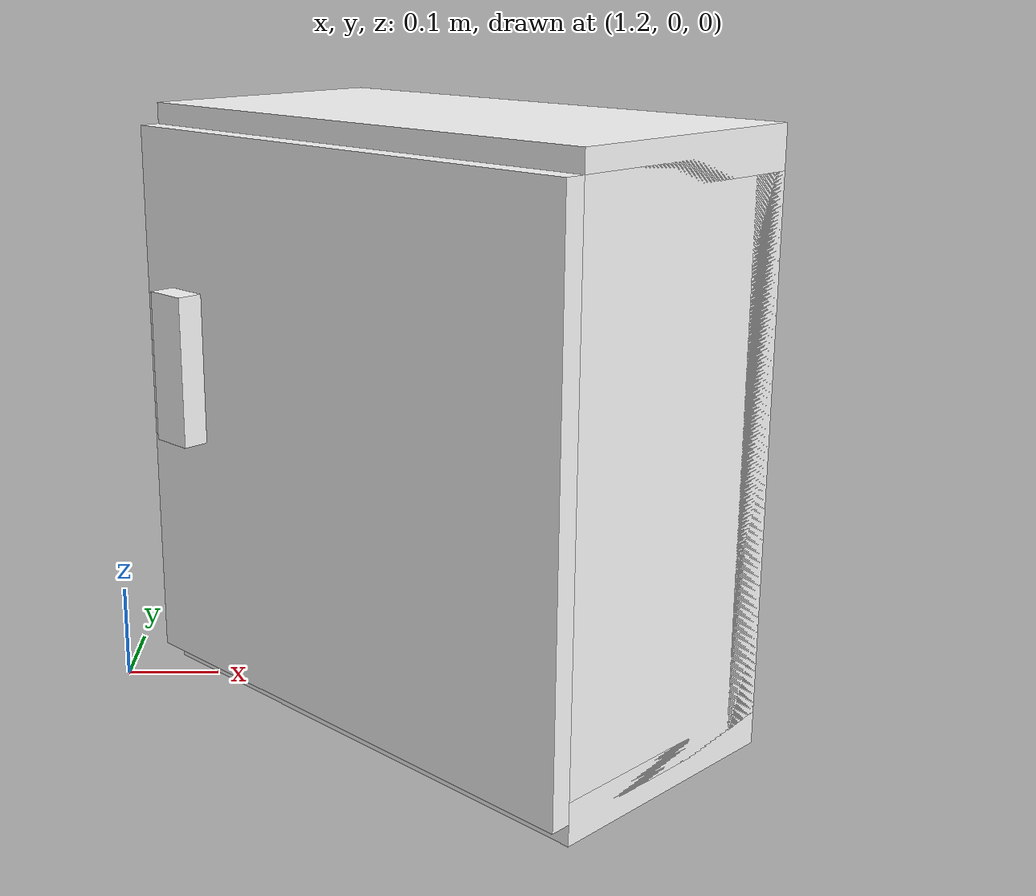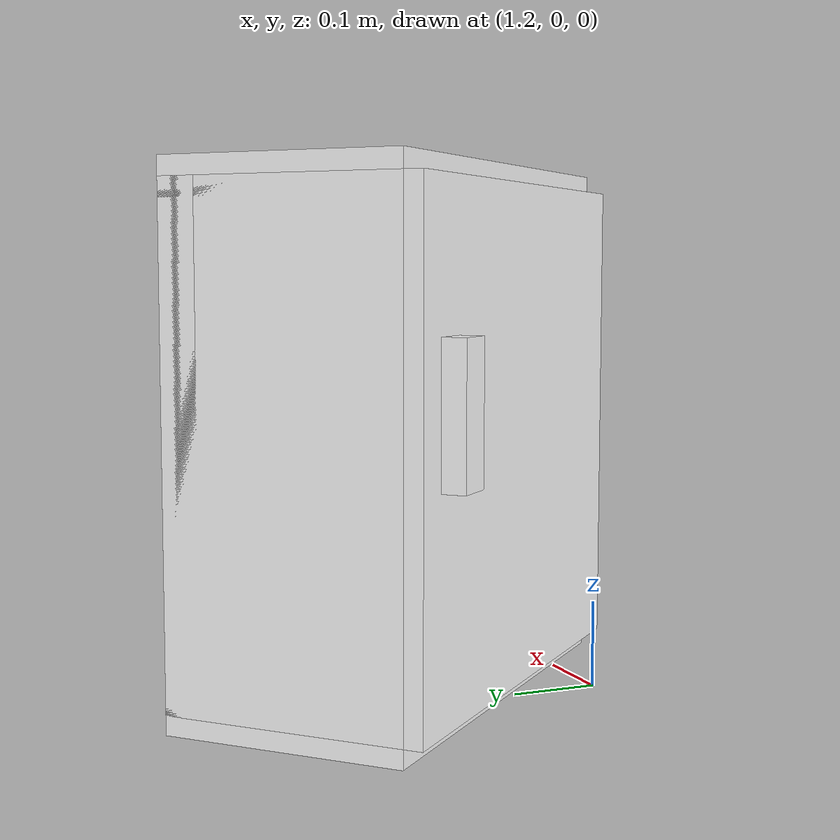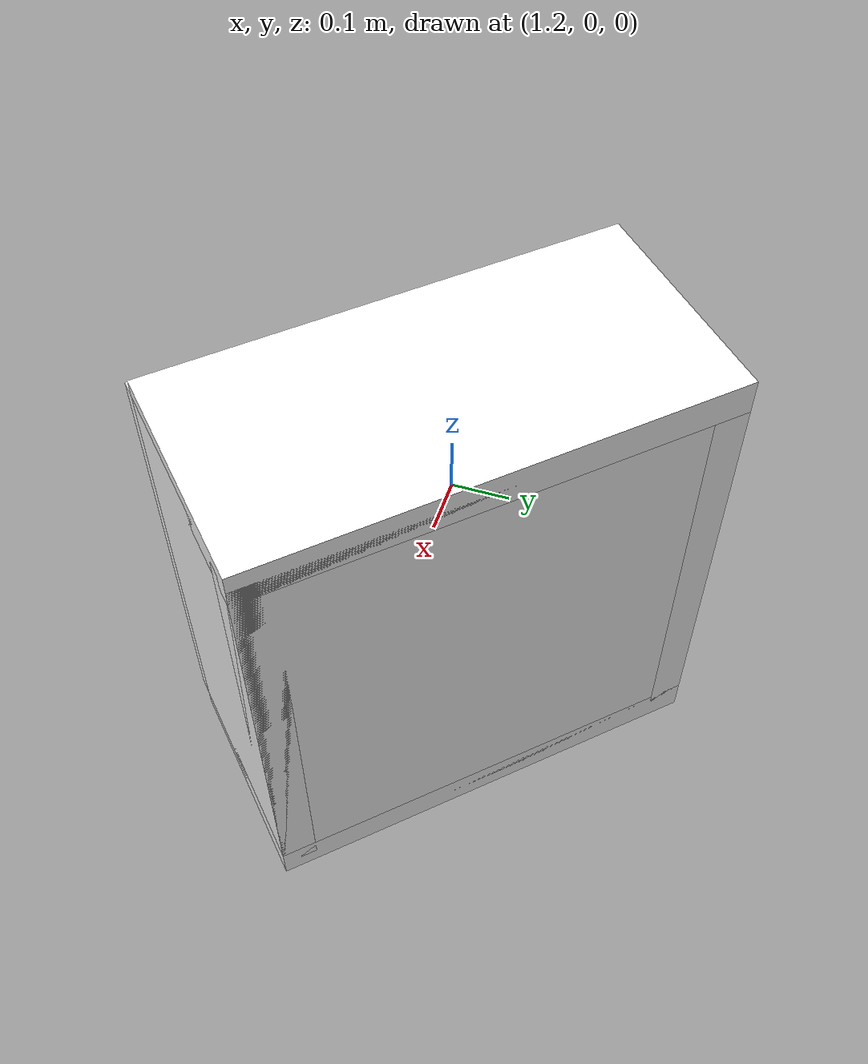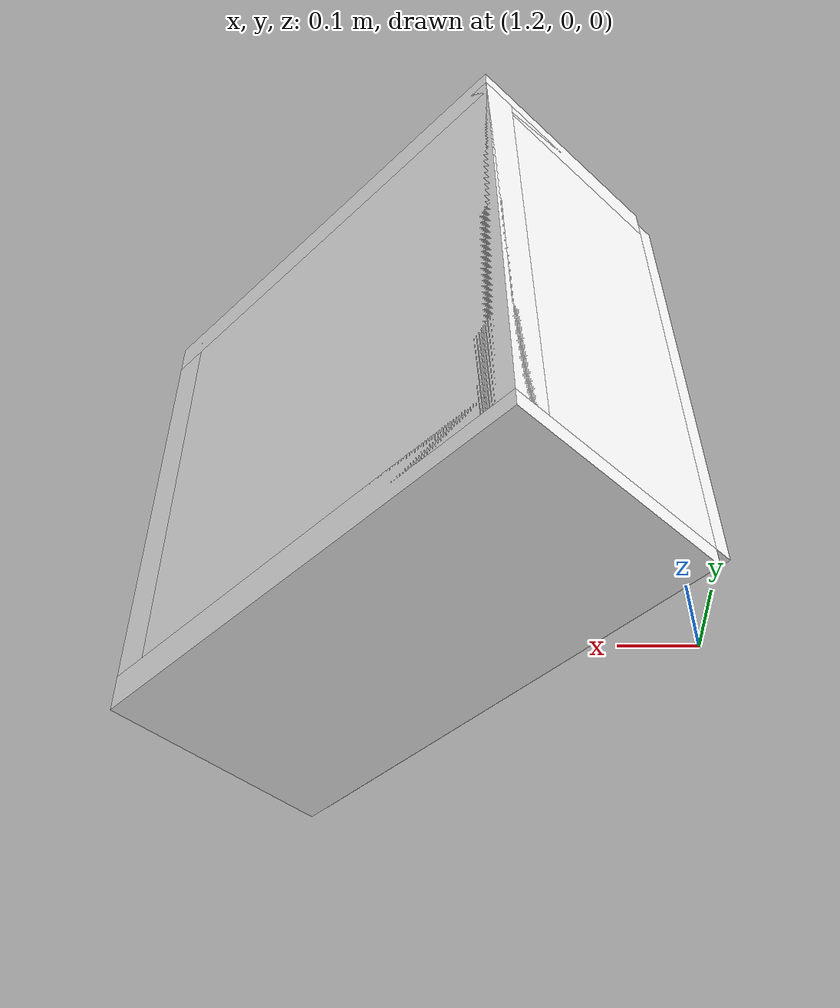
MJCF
<mujoco model="cabinet">
    <compiler angle="radian" eulerseq='zxy' />
    <option gravity = "0 0 0" />
    <option>
        <flag contact = "disable"/>
    </option>
    <statistic	extent="1.0" center="0.0 0.0 0.0"/>
    <visual>
        <map fogstart="3" fogend="5" force="0.1" znear=" 0.100000 " zfar=" 12.000000 "/>
    </visual>
    <size njmax="500" nconmax="100" />
    <actuator>
        <velocity joint="bottom_left_hinge" name="viva_revolution" kv='10'></velocity>
    </actuator>
    <asset>
        <texture builtin="flat" name="tabletex" height="32" width="32" rgb1="1 1 1" type="cube"></texture>
        <texture builtin="flat" name="objtex" height="32" width="32" rgb1="1 1 1" type="cube"></texture>
        <texture builtin="flat" name="handletex" height="32" width="32" rgb1="1 1 1" type="cube"></texture>
        <texture builtin="flat" name="wallpaper" height="32" width="32" rgb1="1 1 1" type="cube"></texture>
        <material name="geomTable" shininess="0.03" specular="0.75" texture="tabletex"></material>
        <material name="geomObj" shininess="0.03" specular="0.75" texture="objtex"></material>
        <material name="geomHandle" shininess="0.03" specular="0.75" texture="handletex"></material>
        <material name="bg" shininess="0.03" specular="0.75" texture="wallpaper"></material>
    </asset>
    <worldbody>
            <body name="cabinet_bottom" pos= " 1.565342 0.104043 -0.056958 "  quat= " -0.375621 0.000000 0.000000 0.926773" >
                <inertial pos="0 0 0" mass="1" diaginertia="1 1 1" />
                <geom size= " 0.158776 0.326205 0.024641 "  type="box" material="geomObj" name="b"/>
                <body name="cabinet_left" pos= " 0.000000 -0.301564 0.324793 " >
                    <inertial pos="0 0 0" mass="1" diaginertia="1 1 1" />
                    <geom size= " 0.158776 0.024641 0.324793 "  type="box" material="geomObj" name="c" />
                </body>
                <body name="cabinet_right" pos= " 0.000000 0.301564 0.324793 " >
                    <inertial pos="0 0 0" mass="1" diaginertia="1 1 1" />
                    <geom size= " 0.158776 0.024641 0.324793 "  type="box" material="geomObj" name="d" />
                </body>
                <body name="cabinet_top" pos= " 0.000000 0.000000 0.649586 " >
                    <inertial pos="0 0 0" mass="1" diaginertia="1 1 1" />
                    <geom size= " 0.158776 0.326205 0.024641 "  type="box" material="geomObj" name="e"/>
                </body>
                <body name="cabinet_back" pos= " -0.134135 0.000000 0.324793 "  >
                    <inertial pos="0 0 0" mass="1" diaginertia="1 1 1" />
                    <geom size= " 0.024641 0.326205 0.324793 "  type="box" material="geomObj" name="f" />
                </body>
                <body name="cabinet_left_hinge" pos= " 0.158776 0.326205 0.324793 " >
                    <inertial pos= " 0.000000 -0.326205 0.000000 "  mass="1" diaginertia="1 1 1" />
                    <joint name="bottom_left_hinge" type="hinge" pos="0 0 0" axis="0 0 1" limited="true" range= "0 2.3"  />
                    <geom size= " 0.024641 0.326205 0.324793 "  pos= " 0.000000 -0.326205 0.000000 "  type="box" material="geomObj" name="g"/>
                    <body name="handle_link" pos= " 0.039694 -0.576483 0.051119 " >
                        <inertial pos="0 0 0" mass="1" diaginertia="1 1 1" />
                        <geom size= " 0.015988 0.026884 0.089131 "  type="box" material="geomHandle" name="h"/>
                    </body>
                </body>
            </body>
        <body name="external_camera_body_0" pos="0.0 0 0.00">
            <camera euler="-1.57 1.57 0.0" fovy=" 54.280851 " name="external_camera_0" pos="0.0 0 0"></camera>
            <inertial pos= " 0.00 0.0 0.000000 " mass="1" diaginertia="1 1 1" />
            <joint name="cam_j" pos="0.0 0 0" axis = "1 0 0" type="free" />
        </body>
    </worldbody>
</mujoco>
